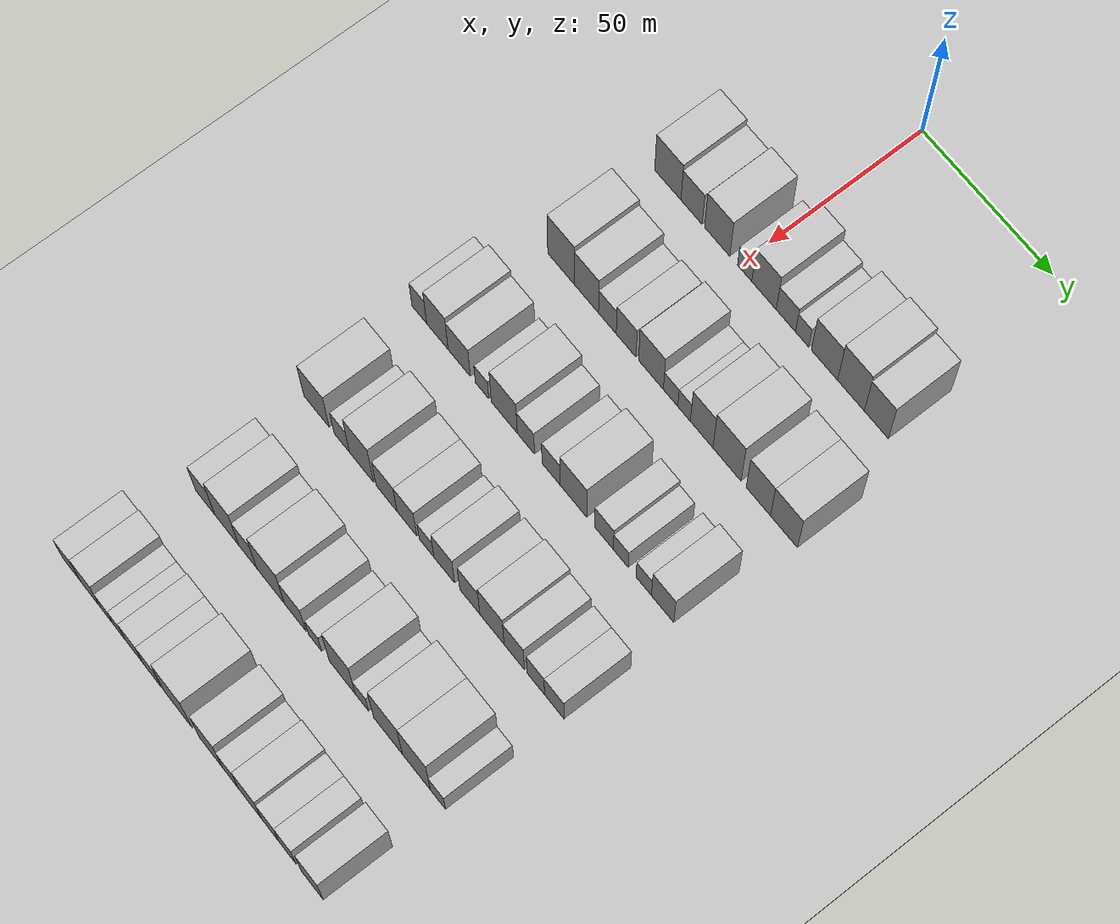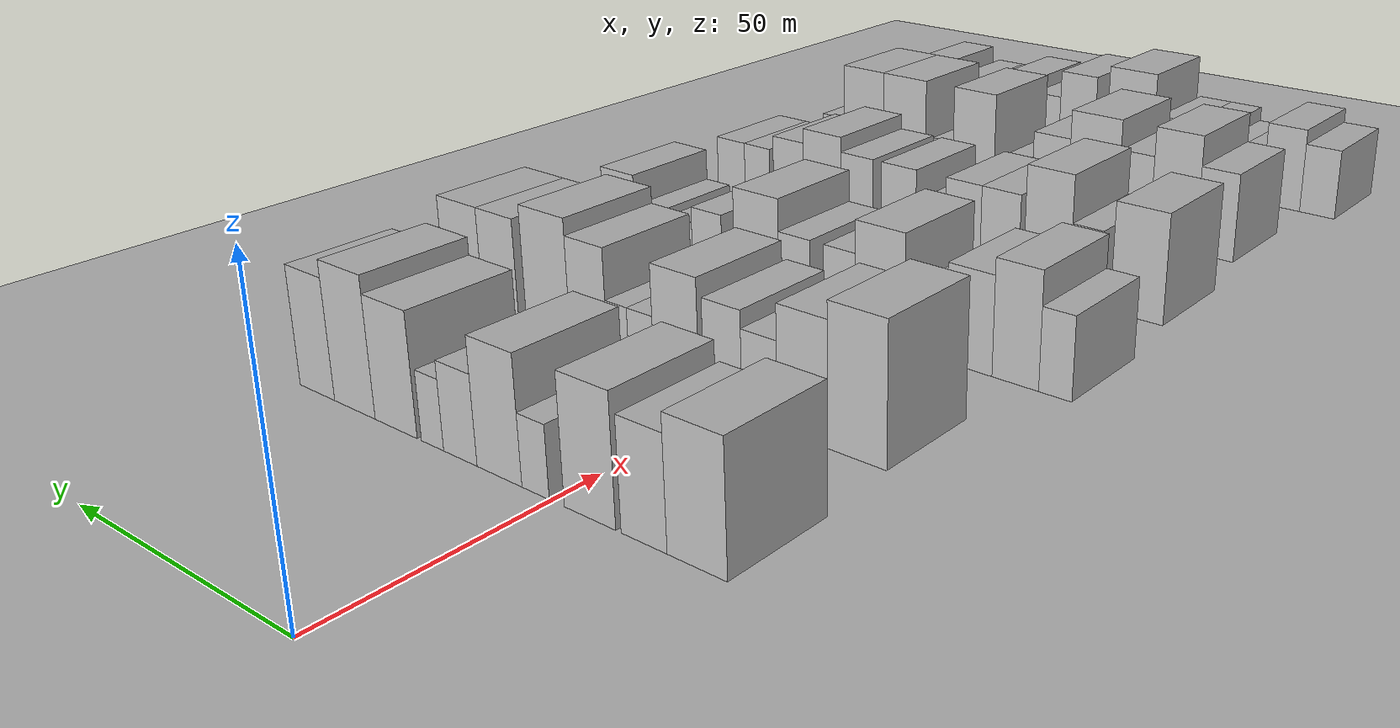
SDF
<sdf version="1.6">
 <world name="default">
  <include><name>ground_plane_1</name><uri>model://HANNAS_ground_plane</uri></include>
  <include>
   <name>ground_plane_2</name>
   <uri>model://HANNAS_ground_plane</uri>
   <pose>100 0 0  0 0 0</pose>
  </include>
  <model name="building_55">
   <static>1</static>
   <pose>50.0000 -27.7860 0 0.000000 0.000000 0.000000</pose>
   <link name="link">
    <pose>0 0 10.50 0 0 0</pose>
    <collision name="collision"><geometry><box><size>20.0000 10.4671 21.0000</size></box></geometry></collision>
    <visual name="visual">
     <cast_shadows>0</cast_shadows>
     <geometry><box><size>20.0000 10.4671 21.0000</size></box></geometry>
     <material>
      <script>
       <uri>model://HANNAS_wall/materials/scripts</uri>
       <uri>model://HANNAS_wall/materials/textures</uri>
       <name>vrc/HANNAS_wall</name>
      </script>
     </material>
    </visual>
   </link>
  </model>
  <model name="building_56">
   <static>1</static>
   <pose>50.0000 -18.3479 0 0.000000 0.000000 0.000000</pose>
   <link name="link">
    <pose>0 0 9.00 0 0 0</pose>
    <collision name="collision"><geometry><box><size>20.0000 8.4090 18.0000</size></box></geometry></collision>
    <visual name="visual">
     <cast_shadows>0</cast_shadows>
     <geometry><box><size>20.0000 8.4090 18.0000</size></box></geometry>
     <material>
      <script>
       <uri>model://HANNAS_wall/materials/scripts</uri>
       <uri>model://HANNAS_wall/materials/textures</uri>
       <name>vrc/HANNAS_wall</name>
      </script>
     </material>
    </visual>
   </link>
  </model>
  <model name="building_57">
   <static>1</static>
   <pose>50.0000 -8.1691 0 0.000000 0.000000 0.000000</pose>
   <link name="link">
    <pose>0 0 10.50 0 0 0</pose>
    <collision name="collision"><geometry><box><size>20.0000 9.9487 21.0000</size></box></geometry></collision>
    <visual name="visual">
     <cast_shadows>0</cast_shadows>
     <geometry><box><size>20.0000 9.9487 21.0000</size></box></geometry>
     <material>
      <script>
       <uri>model://HANNAS_wall/materials/scripts</uri>
       <uri>model://HANNAS_wall/materials/textures</uri>
       <name>vrc/HANNAS_wall</name>
      </script>
     </material>
    </visual>
   </link>
  </model>
  <model name="building_58">
   <static>1</static>
   <pose>50.0000 2.6003 0 0.000000 0.000000 0.000000</pose>
   <link name="link">
    <pose>0 0 6.00 0 0 0</pose>
    <collision name="collision"><geometry><box><size>20.0000 5.5902 12.0000</size></box></geometry></collision>
    <visual name="visual">
     <cast_shadows>0</cast_shadows>
     <geometry><box><size>20.0000 5.5902 12.0000</size></box></geometry>
     <material>
      <script>
       <uri>model://HANNAS_wall/materials/scripts</uri>
       <uri>model://HANNAS_wall/materials/textures</uri>
       <name>vrc/HANNAS_wall</name>
      </script>
     </material>
    </visual>
   </link>
  </model>
  <model name="building_59">
   <static>1</static>
   <pose>50.0000 10.1750 0 0.000000 0.000000 0.000000</pose>
   <link name="link">
    <pose>0 0 10.50 0 0 0</pose>
    <collision name="collision"><geometry><box><size>20.0000 9.5592 21.0000</size></box></geometry></collision>
    <visual name="visual">
     <cast_shadows>0</cast_shadows>
     <geometry><box><size>20.0000 9.5592 21.0000</size></box></geometry>
     <material>
      <script>
       <uri>model://HANNAS_wall/materials/scripts</uri>
       <uri>model://HANNAS_wall/materials/textures</uri>
       <name>vrc/HANNAS_wall</name>
      </script>
     </material>
    </visual>
   </link>
  </model>
  <model name="building_60">
   <static>1</static>
   <pose>50.0000 18.6716 0 0.000000 0.000000 0.000000</pose>
   <link name="link">
    <pose>0 0 7.50 0 0 0</pose>
    <collision name="collision"><geometry><box><size>20.0000 7.4339 15.0000</size></box></geometry></collision>
    <visual name="visual">
     <cast_shadows>0</cast_shadows>
     <geometry><box><size>20.0000 7.4339 15.0000</size></box></geometry>
     <material>
      <script>
       <uri>model://HANNAS_wall/materials/scripts</uri>
       <uri>model://HANNAS_wall/materials/textures</uri>
       <name>vrc/HANNAS_wall</name>
      </script>
     </material>
    </visual>
   </link>
  </model>
  <model name="building_61">
   <static>1</static>
   <pose>50.0000 24.9413 0 0.000000 0.000000 0.000000</pose>
   <link name="link">
    <pose>0 0 6.00 0 0 0</pose>
    <collision name="collision"><geometry><box><size>20.0000 5.1055 12.0000</size></box></geometry></collision>
    <visual name="visual">
     <cast_shadows>0</cast_shadows>
     <geometry><box><size>20.0000 5.1055 12.0000</size></box></geometry>
     <material>
      <script>
       <uri>model://HANNAS_wall/materials/scripts</uri>
       <uri>model://HANNAS_wall/materials/textures</uri>
       <name>vrc/HANNAS_wall</name>
      </script>
     </material>
    </visual>
   </link>
  </model>
  <model name="building_62">
   <static>1</static>
   <pose>50.0000 33.5250 0 0.000000 0.000000 0.000000</pose>
   <link name="link">
    <pose>0 0 10.50 0 0 0</pose>
    <collision name="collision"><geometry><box><size>20.0000 10.0618 21.0000</size></box></geometry></collision>
    <visual name="visual">
     <cast_shadows>0</cast_shadows>
     <geometry><box><size>20.0000 10.0618 21.0000</size></box></geometry>
     <material>
      <script>
       <uri>model://HANNAS_wall/materials/scripts</uri>
       <uri>model://HANNAS_wall/materials/textures</uri>
       <name>vrc/HANNAS_wall</name>
      </script>
     </material>
    </visual>
   </link>
  </model>
  <model name="building_63">
   <static>1</static>
   <pose>50.0000 43.6512 0 0.000000 0.000000 0.000000</pose>
   <link name="link">
    <pose>0 0 12.00 0 0 0</pose>
    <collision name="collision"><geometry><box><size>20.0000 10.1907 24.0000</size></box></geometry></collision>
    <visual name="visual">
     <cast_shadows>0</cast_shadows>
     <geometry><box><size>20.0000 10.1907 24.0000</size></box></geometry>
     <material>
      <script>
       <uri>model://HANNAS_wall/materials/scripts</uri>
       <uri>model://HANNAS_wall/materials/textures</uri>
       <name>vrc/HANNAS_wall</name>
      </script>
     </material>
    </visual>
   </link>
  </model>
  <model name="building_64">
   <static>1</static>
   <pose>50.0000 53.2831 0 0.000000 0.000000 0.000000</pose>
   <link name="link">
    <pose>0 0 10.50 0 0 0</pose>
    <collision name="collision"><geometry><box><size>20.0000 9.0732 21.0000</size></box></geometry></collision>
    <visual name="visual">
     <cast_shadows>0</cast_shadows>
     <geometry><box><size>20.0000 9.0732 21.0000</size></box></geometry>
     <material>
      <script>
       <uri>model://HANNAS_wall/materials/scripts</uri>
       <uri>model://HANNAS_wall/materials/textures</uri>
       <name>vrc/HANNAS_wall</name>
      </script>
     </material>
    </visual>
   </link>
  </model>
  <model name="building_182">
   <static>1</static>
   <pose>85.0000 -26.3958 0 0.000000 0.000000 0.000000</pose>
   <link name="link">
    <pose>0 0 12.00 0 0 0</pose>
    <collision name="collision"><geometry><box><size>20.0000 10.7527 24.0000</size></box></geometry></collision>
    <visual name="visual">
     <cast_shadows>0</cast_shadows>
     <geometry><box><size>20.0000 10.7527 24.0000</size></box></geometry>
     <material>
      <script>
       <uri>model://HANNAS_wall/materials/scripts</uri>
       <uri>model://HANNAS_wall/materials/textures</uri>
       <name>vrc/HANNAS_wall</name>
      </script>
     </material>
    </visual>
   </link>
  </model>
  <model name="building_183">
   <static>1</static>
   <pose>85.0000 -16.2431 0 0.000000 0.000000 0.000000</pose>
   <link name="link">
    <pose>0 0 10.50 0 0 0</pose>
    <collision name="collision"><geometry><box><size>20.0000 9.5525 21.0000</size></box></geometry></collision>
    <visual name="visual">
     <cast_shadows>0</cast_shadows>
     <geometry><box><size>20.0000 9.5525 21.0000</size></box></geometry>
     <material>
      <script>
       <uri>model://HANNAS_wall/materials/scripts</uri>
       <uri>model://HANNAS_wall/materials/textures</uri>
       <name>vrc/HANNAS_wall</name>
      </script>
     </material>
    </visual>
   </link>
  </model>
  <model name="building_184">
   <static>1</static>
   <pose>85.0000 -7.9561 0 0.000000 0.000000 0.000000</pose>
   <link name="link">
    <pose>0 0 7.50 0 0 0</pose>
    <collision name="collision"><geometry><box><size>20.0000 7.0215 15.0000</size></box></geometry></collision>
    <visual name="visual">
     <cast_shadows>0</cast_shadows>
     <geometry><box><size>20.0000 7.0215 15.0000</size></box></geometry>
     <material>
      <script>
       <uri>model://HANNAS_wall/materials/scripts</uri>
       <uri>model://HANNAS_wall/materials/textures</uri>
       <name>vrc/HANNAS_wall</name>
      </script>
     </material>
    </visual>
   </link>
  </model>
  <model name="building_185">
   <static>1</static>
   <pose>85.0000 -0.5476 0 0.000000 0.000000 0.000000</pose>
   <link name="link">
    <pose>0 0 9.00 0 0 0</pose>
    <collision name="collision"><geometry><box><size>20.0000 7.7955 18.0000</size></box></geometry></collision>
    <visual name="visual">
     <cast_shadows>0</cast_shadows>
     <geometry><box><size>20.0000 7.7955 18.0000</size></box></geometry>
     <material>
      <script>
       <uri>model://HANNAS_wall/materials/scripts</uri>
       <uri>model://HANNAS_wall/materials/textures</uri>
       <name>vrc/HANNAS_wall</name>
      </script>
     </material>
    </visual>
   </link>
  </model>
  <model name="building_186">
   <static>1</static>
   <pose>85.0000 9.2130 0 0.000000 0.000000 0.000000</pose>
   <link name="link">
    <pose>0 0 10.50 0 0 0</pose>
    <collision name="collision"><geometry><box><size>20.0000 9.7259 21.0000</size></box></geometry></collision>
    <visual name="visual">
     <cast_shadows>0</cast_shadows>
     <geometry><box><size>20.0000 9.7259 21.0000</size></box></geometry>
     <material>
      <script>
       <uri>model://HANNAS_wall/materials/scripts</uri>
       <uri>model://HANNAS_wall/materials/textures</uri>
       <name>vrc/HANNAS_wall</name>
      </script>
     </material>
    </visual>
   </link>
  </model>
  <model name="building_187">
   <static>1</static>
   <pose>85.0000 16.8855 0 0.000000 0.000000 0.000000</pose>
   <link name="link">
    <pose>0 0 6.00 0 0 0</pose>
    <collision name="collision"><geometry><box><size>20.0000 5.6191 12.0000</size></box></geometry></collision>
    <visual name="visual">
     <cast_shadows>0</cast_shadows>
     <geometry><box><size>20.0000 5.6191 12.0000</size></box></geometry>
     <material>
      <script>
       <uri>model://HANNAS_wall/materials/scripts</uri>
       <uri>model://HANNAS_wall/materials/textures</uri>
       <name>vrc/HANNAS_wall</name>
      </script>
     </material>
    </visual>
   </link>
  </model>
  <model name="building_188">
   <static>1</static>
   <pose>85.0000 22.1288 0 0.000000 0.000000 0.000000</pose>
   <link name="link">
    <pose>0 0 6.00 0 0 0</pose>
    <collision name="collision"><geometry><box><size>20.0000 4.8674 12.0000</size></box></geometry></collision>
    <visual name="visual">
     <cast_shadows>0</cast_shadows>
     <geometry><box><size>20.0000 4.8674 12.0000</size></box></geometry>
     <material>
      <script>
       <uri>model://HANNAS_wall/materials/scripts</uri>
       <uri>model://HANNAS_wall/materials/textures</uri>
       <name>vrc/HANNAS_wall</name>
      </script>
     </material>
    </visual>
   </link>
  </model>
  <model name="building_189">
   <static>1</static>
   <pose>85.0000 28.9378 0 0.000000 0.000000 0.000000</pose>
   <link name="link">
    <pose>0 0 10.50 0 0 0</pose>
    <collision name="collision"><geometry><box><size>20.0000 8.7505 21.0000</size></box></geometry></collision>
    <visual name="visual">
     <cast_shadows>0</cast_shadows>
     <geometry><box><size>20.0000 8.7505 21.0000</size></box></geometry>
     <material>
      <script>
       <uri>model://HANNAS_wall/materials/scripts</uri>
       <uri>model://HANNAS_wall/materials/textures</uri>
       <name>vrc/HANNAS_wall</name>
      </script>
     </material>
    </visual>
   </link>
  </model>
  <model name="building_190">
   <static>1</static>
   <pose>85.0000 38.7051 0 0.000000 0.000000 0.000000</pose>
   <link name="link">
    <pose>0 0 12.00 0 0 0</pose>
    <collision name="collision"><geometry><box><size>20.0000 10.7841 24.0000</size></box></geometry></collision>
    <visual name="visual">
     <cast_shadows>0</cast_shadows>
     <geometry><box><size>20.0000 10.7841 24.0000</size></box></geometry>
     <material>
      <script>
       <uri>model://HANNAS_wall/materials/scripts</uri>
       <uri>model://HANNAS_wall/materials/textures</uri>
       <name>vrc/HANNAS_wall</name>
      </script>
     </material>
    </visual>
   </link>
  </model>
  <model name="building_191">
   <static>1</static>
   <pose>85.0000 50.6989 0 0.000000 0.000000 0.000000</pose>
   <link name="link">
    <pose>0 0 10.50 0 0 0</pose>
    <collision name="collision"><geometry><box><size>20.0000 9.2036 21.0000</size></box></geometry></collision>
    <visual name="visual">
     <cast_shadows>0</cast_shadows>
     <geometry><box><size>20.0000 9.2036 21.0000</size></box></geometry>
     <material>
      <script>
       <uri>model://HANNAS_wall/materials/scripts</uri>
       <uri>model://HANNAS_wall/materials/textures</uri>
       <name>vrc/HANNAS_wall</name>
      </script>
     </material>
    </visual>
   </link>
  </model>
  <model name="building_192">
   <static>1</static>
   <pose>85.0000 60.4171 0 0.000000 0.000000 0.000000</pose>
   <link name="link">
    <pose>0 0 10.50 0 0 0</pose>
    <collision name="collision"><geometry><box><size>20.0000 10.2328 21.0000</size></box></geometry></collision>
    <visual name="visual">
     <cast_shadows>0</cast_shadows>
     <geometry><box><size>20.0000 10.2328 21.0000</size></box></geometry>
     <material>
      <script>
       <uri>model://HANNAS_wall/materials/scripts</uri>
       <uri>model://HANNAS_wall/materials/textures</uri>
       <name>vrc/HANNAS_wall</name>
      </script>
     </material>
    </visual>
   </link>
  </model>
  <model name="building_308">
   <static>1</static>
   <pose>120.0000 -38.3789 0 0.000000 0.000000 0.000000</pose>
   <link name="link">
    <pose>0 0 7.50 0 0 0</pose>
    <collision name="collision"><geometry><box><size>20.0000 6.0082 15.0000</size></box></geometry></collision>
    <visual name="visual">
     <cast_shadows>0</cast_shadows>
     <geometry><box><size>20.0000 6.0082 15.0000</size></box></geometry>
     <material>
      <script>
       <uri>model://HANNAS_wall/materials/scripts</uri>
       <uri>model://HANNAS_wall/materials/textures</uri>
       <name>vrc/HANNAS_wall</name>
      </script>
     </material>
    </visual>
   </link>
  </model>
  <model name="building_309">
   <static>1</static>
   <pose>120.0000 -31.0264 0 0.000000 0.000000 0.000000</pose>
   <link name="link">
    <pose>0 0 10.50 0 0 0</pose>
    <collision name="collision"><geometry><box><size>20.0000 8.6968 21.0000</size></box></geometry></collision>
    <visual name="visual">
     <cast_shadows>0</cast_shadows>
     <geometry><box><size>20.0000 8.6968 21.0000</size></box></geometry>
     <material>
      <script>
       <uri>model://HANNAS_wall/materials/scripts</uri>
       <uri>model://HANNAS_wall/materials/textures</uri>
       <name>vrc/HANNAS_wall</name>
      </script>
     </material>
    </visual>
   </link>
  </model>
  <model name="building_310">
   <static>1</static>
   <pose>120.0000 -22.2112 0 0.000000 0.000000 0.000000</pose>
   <link name="link">
    <pose>0 0 9.00 0 0 0</pose>
    <collision name="collision"><geometry><box><size>20.0000 8.9335 18.0000</size></box></geometry></collision>
    <visual name="visual">
     <cast_shadows>0</cast_shadows>
     <geometry><box><size>20.0000 8.9335 18.0000</size></box></geometry>
     <material>
      <script>
       <uri>model://HANNAS_wall/materials/scripts</uri>
       <uri>model://HANNAS_wall/materials/textures</uri>
       <name>vrc/HANNAS_wall</name>
      </script>
     </material>
    </visual>
   </link>
  </model>
  <model name="building_311">
   <static>1</static>
   <pose>120.0000 -13.0457 0 0.000000 0.000000 0.000000</pose>
   <link name="link">
    <pose>0 0 6.00 0 0 0</pose>
    <collision name="collision"><geometry><box><size>20.0000 5.3976 12.0000</size></box></geometry></collision>
    <visual name="visual">
     <cast_shadows>0</cast_shadows>
     <geometry><box><size>20.0000 5.3976 12.0000</size></box></geometry>
     <material>
      <script>
       <uri>model://HANNAS_wall/materials/scripts</uri>
       <uri>model://HANNAS_wall/materials/textures</uri>
       <name>vrc/HANNAS_wall</name>
      </script>
     </material>
    </visual>
   </link>
  </model>
  <model name="building_312">
   <static>1</static>
   <pose>120.0000 -4.1575 0 0.000000 0.000000 0.000000</pose>
   <link name="link">
    <pose>0 0 10.50 0 0 0</pose>
    <collision name="collision"><geometry><box><size>20.0000 10.3786 21.0000</size></box></geometry></collision>
    <visual name="visual">
     <cast_shadows>0</cast_shadows>
     <geometry><box><size>20.0000 10.3786 21.0000</size></box></geometry>
     <material>
      <script>
       <uri>model://HANNAS_wall/materials/scripts</uri>
       <uri>model://HANNAS_wall/materials/textures</uri>
       <name>vrc/HANNAS_wall</name>
      </script>
     </material>
    </visual>
   </link>
  </model>
  <model name="building_313">
   <static>1</static>
   <pose>120.0000 4.4223 0 0.000000 0.000000 0.000000</pose>
   <link name="link">
    <pose>0 0 7.50 0 0 0</pose>
    <collision name="collision"><geometry><box><size>20.0000 6.7811 15.0000</size></box></geometry></collision>
    <visual name="visual">
     <cast_shadows>0</cast_shadows>
     <geometry><box><size>20.0000 6.7811 15.0000</size></box></geometry>
     <material>
      <script>
       <uri>model://HANNAS_wall/materials/scripts</uri>
       <uri>model://HANNAS_wall/materials/textures</uri>
       <name>vrc/HANNAS_wall</name>
      </script>
     </material>
    </visual>
   </link>
  </model>
  <model name="building_314">
   <static>1</static>
   <pose>120.0000 14.3544 0 0.000000 0.000000 0.000000</pose>
   <link name="link">
    <pose>0 0 7.50 0 0 0</pose>
    <collision name="collision"><geometry><box><size>20.0000 7.0831 15.0000</size></box></geometry></collision>
    <visual name="visual">
     <cast_shadows>0</cast_shadows>
     <geometry><box><size>20.0000 7.0831 15.0000</size></box></geometry>
     <material>
      <script>
       <uri>model://HANNAS_wall/materials/scripts</uri>
       <uri>model://HANNAS_wall/materials/textures</uri>
       <name>vrc/HANNAS_wall</name>
      </script>
     </material>
    </visual>
   </link>
  </model>
  <model name="building_315">
   <static>1</static>
   <pose>120.0000 23.0806 0 0.000000 0.000000 0.000000</pose>
   <link name="link">
    <pose>0 0 10.50 0 0 0</pose>
    <collision name="collision"><geometry><box><size>20.0000 10.3694 21.0000</size></box></geometry></collision>
    <visual name="visual">
     <cast_shadows>0</cast_shadows>
     <geometry><box><size>20.0000 10.3694 21.0000</size></box></geometry>
     <material>
      <script>
       <uri>model://HANNAS_wall/materials/scripts</uri>
       <uri>model://HANNAS_wall/materials/textures</uri>
       <name>vrc/HANNAS_wall</name>
      </script>
     </material>
    </visual>
   </link>
  </model>
  <model name="building_316">
   <static>1</static>
   <pose>120.0000 34.9145 0 0.000000 0.000000 0.000000</pose>
   <link name="link">
    <pose>0 0 7.50 0 0 0</pose>
    <collision name="collision"><geometry><box><size>20.0000 7.2983 15.0000</size></box></geometry></collision>
    <visual name="visual">
     <cast_shadows>0</cast_shadows>
     <geometry><box><size>20.0000 7.2983 15.0000</size></box></geometry>
     <material>
      <script>
       <uri>model://HANNAS_wall/materials/scripts</uri>
       <uri>model://HANNAS_wall/materials/textures</uri>
       <name>vrc/HANNAS_wall</name>
      </script>
     </material>
    </visual>
   </link>
  </model>
  <model name="building_317">
   <static>1</static>
   <pose>120.0000 41.4288 0 0.000000 0.000000 0.000000</pose>
   <link name="link">
    <pose>0 0 6.00 0 0 0</pose>
    <collision name="collision"><geometry><box><size>20.0000 5.7303 12.0000</size></box></geometry></collision>
    <visual name="visual">
     <cast_shadows>0</cast_shadows>
     <geometry><box><size>20.0000 5.7303 12.0000</size></box></geometry>
     <material>
      <script>
       <uri>model://HANNAS_wall/materials/scripts</uri>
       <uri>model://HANNAS_wall/materials/textures</uri>
       <name>vrc/HANNAS_wall</name>
      </script>
     </material>
    </visual>
   </link>
  </model>
  <model name="building_318">
   <static>1</static>
   <pose>120.0000 50.2404 0 0.000000 0.000000 0.000000</pose>
   <link name="link">
    <pose>0 0 6.00 0 0 0</pose>
    <collision name="collision"><geometry><box><size>20.0000 5.8928 12.0000</size></box></geometry></collision>
    <visual name="visual">
     <cast_shadows>0</cast_shadows>
     <geometry><box><size>20.0000 5.8928 12.0000</size></box></geometry>
     <material>
      <script>
       <uri>model://HANNAS_wall/materials/scripts</uri>
       <uri>model://HANNAS_wall/materials/textures</uri>
       <name>vrc/HANNAS_wall</name>
      </script>
     </material>
    </visual>
   </link>
  </model>
  <model name="building_319">
   <static>1</static>
   <pose>120.0000 57.4433 0 0.000000 0.000000 0.000000</pose>
   <link name="link">
    <pose>0 0 9.00 0 0 0</pose>
    <collision name="collision"><geometry><box><size>20.0000 8.5129 18.0000</size></box></geometry></collision>
    <visual name="visual">
     <cast_shadows>0</cast_shadows>
     <geometry><box><size>20.0000 8.5129 18.0000</size></box></geometry>
     <material>
      <script>
       <uri>model://HANNAS_wall/materials/scripts</uri>
       <uri>model://HANNAS_wall/materials/textures</uri>
       <name>vrc/HANNAS_wall</name>
      </script>
     </material>
    </visual>
   </link>
  </model>
  <model name="building_436">
   <static>1</static>
   <pose>155.0000 -33.6533 0 0.000000 0.000000 0.000000</pose>
   <link name="link">
    <pose>0 0 10.50 0 0 0</pose>
    <collision name="collision"><geometry><box><size>20.0000 10.3035 21.0000</size></box></geometry></collision>
    <visual name="visual">
     <cast_shadows>0</cast_shadows>
     <geometry><box><size>20.0000 10.3035 21.0000</size></box></geometry>
     <material>
      <script>
       <uri>model://HANNAS_wall/materials/scripts</uri>
       <uri>model://HANNAS_wall/materials/textures</uri>
       <name>vrc/HANNAS_wall</name>
      </script>
     </material>
    </visual>
   </link>
  </model>
  <model name="building_437">
   <static>1</static>
   <pose>155.0000 -23.3596 0 0.000000 0.000000 0.000000</pose>
   <link name="link">
    <pose>0 0 7.50 0 0 0</pose>
    <collision name="collision"><geometry><box><size>20.0000 6.2838 15.0000</size></box></geometry></collision>
    <visual name="visual">
     <cast_shadows>0</cast_shadows>
     <geometry><box><size>20.0000 6.2838 15.0000</size></box></geometry>
     <material>
      <script>
       <uri>model://HANNAS_wall/materials/scripts</uri>
       <uri>model://HANNAS_wall/materials/textures</uri>
       <name>vrc/HANNAS_wall</name>
      </script>
     </material>
    </visual>
   </link>
  </model>
  <model name="building_438">
   <static>1</static>
   <pose>155.0000 -15.3714 0 0.000000 0.000000 0.000000</pose>
   <link name="link">
    <pose>0 0 12.00 0 0 0</pose>
    <collision name="collision"><geometry><box><size>20.0000 9.6926 24.0000</size></box></geometry></collision>
    <visual name="visual">
     <cast_shadows>0</cast_shadows>
     <geometry><box><size>20.0000 9.6926 24.0000</size></box></geometry>
     <material>
      <script>
       <uri>model://HANNAS_wall/materials/scripts</uri>
       <uri>model://HANNAS_wall/materials/textures</uri>
       <name>vrc/HANNAS_wall</name>
      </script>
     </material>
    </visual>
   </link>
  </model>
  <model name="building_439">
   <static>1</static>
   <pose>155.0000 -5.3158 0 0.000000 0.000000 0.000000</pose>
   <link name="link">
    <pose>0 0 9.00 0 0 0</pose>
    <collision name="collision"><geometry><box><size>20.0000 8.4187 18.0000</size></box></geometry></collision>
    <visual name="visual">
     <cast_shadows>0</cast_shadows>
     <geometry><box><size>20.0000 8.4187 18.0000</size></box></geometry>
     <material>
      <script>
       <uri>model://HANNAS_wall/materials/scripts</uri>
       <uri>model://HANNAS_wall/materials/textures</uri>
       <name>vrc/HANNAS_wall</name>
      </script>
     </material>
    </visual>
   </link>
  </model>
  <model name="building_440">
   <static>1</static>
   <pose>155.0000 2.8377 0 0.000000 0.000000 0.000000</pose>
   <link name="link">
    <pose>0 0 9.00 0 0 0</pose>
    <collision name="collision"><geometry><box><size>20.0000 7.8881 18.0000</size></box></geometry></collision>
    <visual name="visual">
     <cast_shadows>0</cast_shadows>
     <geometry><box><size>20.0000 7.8881 18.0000</size></box></geometry>
     <material>
      <script>
       <uri>model://HANNAS_wall/materials/scripts</uri>
       <uri>model://HANNAS_wall/materials/textures</uri>
       <name>vrc/HANNAS_wall</name>
      </script>
     </material>
    </visual>
   </link>
  </model>
  <model name="building_441">
   <static>1</static>
   <pose>155.0000 10.6793 0 0.000000 0.000000 0.000000</pose>
   <link name="link">
    <pose>0 0 6.00 0 0 0</pose>
    <collision name="collision"><geometry><box><size>20.0000 5.7950 12.0000</size></box></geometry></collision>
    <visual name="visual">
     <cast_shadows>0</cast_shadows>
     <geometry><box><size>20.0000 5.7950 12.0000</size></box></geometry>
     <material>
      <script>
       <uri>model://HANNAS_wall/materials/scripts</uri>
       <uri>model://HANNAS_wall/materials/textures</uri>
       <name>vrc/HANNAS_wall</name>
      </script>
     </material>
    </visual>
   </link>
  </model>
  <model name="building_442">
   <static>1</static>
   <pose>155.0000 17.6611 0 0.000000 0.000000 0.000000</pose>
   <link name="link">
    <pose>0 0 9.00 0 0 0</pose>
    <collision name="collision"><geometry><box><size>20.0000 8.1686 18.0000</size></box></geometry></collision>
    <visual name="visual">
     <cast_shadows>0</cast_shadows>
     <geometry><box><size>20.0000 8.1686 18.0000</size></box></geometry>
     <material>
      <script>
       <uri>model://HANNAS_wall/materials/scripts</uri>
       <uri>model://HANNAS_wall/materials/textures</uri>
       <name>vrc/HANNAS_wall</name>
      </script>
     </material>
    </visual>
   </link>
  </model>
  <model name="building_443">
   <static>1</static>
   <pose>155.0000 27.6809 0 0.000000 0.000000 0.000000</pose>
   <link name="link">
    <pose>0 0 9.00 0 0 0</pose>
    <collision name="collision"><geometry><box><size>20.0000 7.8711 18.0000</size></box></geometry></collision>
    <visual name="visual">
     <cast_shadows>0</cast_shadows>
     <geometry><box><size>20.0000 7.8711 18.0000</size></box></geometry>
     <material>
      <script>
       <uri>model://HANNAS_wall/materials/scripts</uri>
       <uri>model://HANNAS_wall/materials/textures</uri>
       <name>vrc/HANNAS_wall</name>
      </script>
     </material>
    </visual>
   </link>
  </model>
  <model name="building_444">
   <static>1</static>
   <pose>155.0000 36.3362 0 0.000000 0.000000 0.000000</pose>
   <link name="link">
    <pose>0 0 10.50 0 0 0</pose>
    <collision name="collision"><geometry><box><size>20.0000 9.4395 21.0000</size></box></geometry></collision>
    <visual name="visual">
     <cast_shadows>0</cast_shadows>
     <geometry><box><size>20.0000 9.4395 21.0000</size></box></geometry>
     <material>
      <script>
       <uri>model://HANNAS_wall/materials/scripts</uri>
       <uri>model://HANNAS_wall/materials/textures</uri>
       <name>vrc/HANNAS_wall</name>
      </script>
     </material>
    </visual>
   </link>
  </model>
  <model name="building_445">
   <static>1</static>
   <pose>155.0000 44.9960 0 0.000000 0.000000 0.000000</pose>
   <link name="link">
    <pose>0 0 9.00 0 0 0</pose>
    <collision name="collision"><geometry><box><size>20.0000 7.8801 18.0000</size></box></geometry></collision>
    <visual name="visual">
     <cast_shadows>0</cast_shadows>
     <geometry><box><size>20.0000 7.8801 18.0000</size></box></geometry>
     <material>
      <script>
       <uri>model://HANNAS_wall/materials/scripts</uri>
       <uri>model://HANNAS_wall/materials/textures</uri>
       <name>vrc/HANNAS_wall</name>
      </script>
     </material>
    </visual>
   </link>
  </model>
  <model name="building_446">
   <static>1</static>
   <pose>155.0000 53.2907 0 0.000000 0.000000 0.000000</pose>
   <link name="link">
    <pose>0 0 7.50 0 0 0</pose>
    <collision name="collision"><geometry><box><size>20.0000 6.7093 15.0000</size></box></geometry></collision>
    <visual name="visual">
     <cast_shadows>0</cast_shadows>
     <geometry><box><size>20.0000 6.7093 15.0000</size></box></geometry>
     <material>
      <script>
       <uri>model://HANNAS_wall/materials/scripts</uri>
       <uri>model://HANNAS_wall/materials/textures</uri>
       <name>vrc/HANNAS_wall</name>
      </script>
     </material>
    </visual>
   </link>
  </model>
  <model name="building_447">
   <static>1</static>
   <pose>155.0000 60.3656 0 0.000000 0.000000 0.000000</pose>
   <link name="link">
    <pose>0 0 7.50 0 0 0</pose>
    <collision name="collision"><geometry><box><size>20.0000 7.4405 15.0000</size></box></geometry></collision>
    <visual name="visual">
     <cast_shadows>0</cast_shadows>
     <geometry><box><size>20.0000 7.4405 15.0000</size></box></geometry>
     <material>
      <script>
       <uri>model://HANNAS_wall/materials/scripts</uri>
       <uri>model://HANNAS_wall/materials/textures</uri>
       <name>vrc/HANNAS_wall</name>
      </script>
     </material>
    </visual>
   </link>
  </model>
  <model name="building_564">
   <static>1</static>
   <pose>190.0000 -31.4630 0 0.000000 0.000000 0.000000</pose>
   <link name="link">
    <pose>0 0 9.00 0 0 0</pose>
    <collision name="collision"><geometry><box><size>20.0000 7.8137 18.0000</size></box></geometry></collision>
    <visual name="visual">
     <cast_shadows>0</cast_shadows>
     <geometry><box><size>20.0000 7.8137 18.0000</size></box></geometry>
     <material>
      <script>
       <uri>model://HANNAS_wall/materials/scripts</uri>
       <uri>model://HANNAS_wall/materials/textures</uri>
       <name>vrc/HANNAS_wall</name>
      </script>
     </material>
    </visual>
   </link>
  </model>
  <model name="building_565">
   <static>1</static>
   <pose>190.0000 -22.6054 0 0.000000 0.000000 0.000000</pose>
   <link name="link">
    <pose>0 0 12.00 0 0 0</pose>
    <collision name="collision"><geometry><box><size>20.0000 9.9014 24.0000</size></box></geometry></collision>
    <visual name="visual">
     <cast_shadows>0</cast_shadows>
     <geometry><box><size>20.0000 9.9014 24.0000</size></box></geometry>
     <material>
      <script>
       <uri>model://HANNAS_wall/materials/scripts</uri>
       <uri>model://HANNAS_wall/materials/textures</uri>
       <name>vrc/HANNAS_wall</name>
      </script>
     </material>
    </visual>
   </link>
  </model>
  <model name="building_566">
   <static>1</static>
   <pose>190.0000 -14.0237 0 0.000000 0.000000 0.000000</pose>
   <link name="link">
    <pose>0 0 9.00 0 0 0</pose>
    <collision name="collision"><geometry><box><size>20.0000 7.2620 18.0000</size></box></geometry></collision>
    <visual name="visual">
     <cast_shadows>0</cast_shadows>
     <geometry><box><size>20.0000 7.2620 18.0000</size></box></geometry>
     <material>
      <script>
       <uri>model://HANNAS_wall/materials/scripts</uri>
       <uri>model://HANNAS_wall/materials/textures</uri>
       <name>vrc/HANNAS_wall</name>
      </script>
     </material>
    </visual>
   </link>
  </model>
  <model name="building_567">
   <static>1</static>
   <pose>190.0000 -4.7530 0 0.000000 0.000000 0.000000</pose>
   <link name="link">
    <pose>0 0 12.00 0 0 0</pose>
    <collision name="collision"><geometry><box><size>20.0000 11.2794 24.0000</size></box></geometry></collision>
    <visual name="visual">
     <cast_shadows>0</cast_shadows>
     <geometry><box><size>20.0000 11.2794 24.0000</size></box></geometry>
     <material>
      <script>
       <uri>model://HANNAS_wall/materials/scripts</uri>
       <uri>model://HANNAS_wall/materials/textures</uri>
       <name>vrc/HANNAS_wall</name>
      </script>
     </material>
    </visual>
   </link>
  </model>
  <model name="building_568">
   <static>1</static>
   <pose>190.0000 5.1426 0 0.000000 0.000000 0.000000</pose>
   <link name="link">
    <pose>0 0 9.00 0 0 0</pose>
    <collision name="collision"><geometry><box><size>20.0000 8.5119 18.0000</size></box></geometry></collision>
    <visual name="visual">
     <cast_shadows>0</cast_shadows>
     <geometry><box><size>20.0000 8.5119 18.0000</size></box></geometry>
     <material>
      <script>
       <uri>model://HANNAS_wall/materials/scripts</uri>
       <uri>model://HANNAS_wall/materials/textures</uri>
       <name>vrc/HANNAS_wall</name>
      </script>
     </material>
    </visual>
   </link>
  </model>
  <model name="building_569">
   <static>1</static>
   <pose>190.0000 13.0398 0 0.000000 0.000000 0.000000</pose>
   <link name="link">
    <pose>0 0 6.00 0 0 0</pose>
    <collision name="collision"><geometry><box><size>20.0000 5.2825 12.0000</size></box></geometry></collision>
    <visual name="visual">
     <cast_shadows>0</cast_shadows>
     <geometry><box><size>20.0000 5.2825 12.0000</size></box></geometry>
     <material>
      <script>
       <uri>model://HANNAS_wall/materials/scripts</uri>
       <uri>model://HANNAS_wall/materials/textures</uri>
       <name>vrc/HANNAS_wall</name>
      </script>
     </material>
    </visual>
   </link>
  </model>
  <model name="building_570">
   <static>1</static>
   <pose>190.0000 23.8491 0 0.000000 0.000000 0.000000</pose>
   <link name="link">
    <pose>0 0 12.00 0 0 0</pose>
    <collision name="collision"><geometry><box><size>20.0000 10.3362 24.0000</size></box></geometry></collision>
    <visual name="visual">
     <cast_shadows>0</cast_shadows>
     <geometry><box><size>20.0000 10.3362 24.0000</size></box></geometry>
     <material>
      <script>
       <uri>model://HANNAS_wall/materials/scripts</uri>
       <uri>model://HANNAS_wall/materials/textures</uri>
       <name>vrc/HANNAS_wall</name>
      </script>
     </material>
    </visual>
   </link>
  </model>
  <model name="building_571">
   <static>1</static>
   <pose>190.0000 31.5994 0 0.000000 0.000000 0.000000</pose>
   <link name="link">
    <pose>0 0 6.00 0 0 0</pose>
    <collision name="collision"><geometry><box><size>20.0000 5.1645 12.0000</size></box></geometry></collision>
    <visual name="visual">
     <cast_shadows>0</cast_shadows>
     <geometry><box><size>20.0000 5.1645 12.0000</size></box></geometry>
     <material>
      <script>
       <uri>model://HANNAS_wall/materials/scripts</uri>
       <uri>model://HANNAS_wall/materials/textures</uri>
       <name>vrc/HANNAS_wall</name>
      </script>
     </material>
    </visual>
   </link>
  </model>
  <model name="building_572">
   <static>1</static>
   <pose>190.0000 41.8037 0 0.000000 0.000000 0.000000</pose>
   <link name="link">
    <pose>0 0 12.00 0 0 0</pose>
    <collision name="collision"><geometry><box><size>20.0000 11.2439 24.0000</size></box></geometry></collision>
    <visual name="visual">
     <cast_shadows>0</cast_shadows>
     <geometry><box><size>20.0000 11.2439 24.0000</size></box></geometry>
     <material>
      <script>
       <uri>model://HANNAS_wall/materials/scripts</uri>
       <uri>model://HANNAS_wall/materials/textures</uri>
       <name>vrc/HANNAS_wall</name>
      </script>
     </material>
    </visual>
   </link>
  </model>
  <model name="building_573">
   <static>1</static>
   <pose>190.0000 52.8067 0 0.000000 0.000000 0.000000</pose>
   <link name="link">
    <pose>0 0 12.00 0 0 0</pose>
    <collision name="collision"><geometry><box><size>20.0000 10.7621 24.0000</size></box></geometry></collision>
    <visual name="visual">
     <cast_shadows>0</cast_shadows>
     <geometry><box><size>20.0000 10.7621 24.0000</size></box></geometry>
     <material>
      <script>
       <uri>model://HANNAS_wall/materials/scripts</uri>
       <uri>model://HANNAS_wall/materials/textures</uri>
       <name>vrc/HANNAS_wall</name>
      </script>
     </material>
    </visual>
   </link>
  </model>
  <model name="building_574">
   <static>1</static>
   <pose>190.0000 61.1136 0 0.000000 0.000000 0.000000</pose>
   <link name="link">
    <pose>0 0 6.00 0 0 0</pose>
    <collision name="collision"><geometry><box><size>20.0000 5.8516 12.0000</size></box></geometry></collision>
    <visual name="visual">
     <cast_shadows>0</cast_shadows>
     <geometry><box><size>20.0000 5.8516 12.0000</size></box></geometry>
     <material>
      <script>
       <uri>model://HANNAS_wall/materials/scripts</uri>
       <uri>model://HANNAS_wall/materials/textures</uri>
       <name>vrc/HANNAS_wall</name>
      </script>
     </material>
    </visual>
   </link>
  </model>
  <model name="building_688">
   <static>1</static>
   <pose>225.0000 -37.4782 0 0.000000 0.000000 0.000000</pose>
   <link name="link">
    <pose>0 0 7.50 0 0 0</pose>
    <collision name="collision"><geometry><box><size>20.0000 7.4535 15.0000</size></box></geometry></collision>
    <visual name="visual">
     <cast_shadows>0</cast_shadows>
     <geometry><box><size>20.0000 7.4535 15.0000</size></box></geometry>
     <material>
      <script>
       <uri>model://HANNAS_wall/materials/scripts</uri>
       <uri>model://HANNAS_wall/materials/textures</uri>
       <name>vrc/HANNAS_wall</name>
      </script>
     </material>
    </visual>
   </link>
  </model>
  <model name="building_689">
   <static>1</static>
   <pose>225.0000 -29.5598 0 0.000000 0.000000 0.000000</pose>
   <link name="link">
    <pose>0 0 9.00 0 0 0</pose>
    <collision name="collision"><geometry><box><size>20.0000 8.3834 18.0000</size></box></geometry></collision>
    <visual name="visual">
     <cast_shadows>0</cast_shadows>
     <geometry><box><size>20.0000 8.3834 18.0000</size></box></geometry>
     <material>
      <script>
       <uri>model://HANNAS_wall/materials/scripts</uri>
       <uri>model://HANNAS_wall/materials/textures</uri>
       <name>vrc/HANNAS_wall</name>
      </script>
     </material>
    </visual>
   </link>
  </model>
  <model name="building_690">
   <static>1</static>
   <pose>225.0000 -22.6599 0 0.000000 0.000000 0.000000</pose>
   <link name="link">
    <pose>0 0 6.00 0 0 0</pose>
    <collision name="collision"><geometry><box><size>20.0000 5.4165 12.0000</size></box></geometry></collision>
    <visual name="visual">
     <cast_shadows>0</cast_shadows>
     <geometry><box><size>20.0000 5.4165 12.0000</size></box></geometry>
     <material>
      <script>
       <uri>model://HANNAS_wall/materials/scripts</uri>
       <uri>model://HANNAS_wall/materials/textures</uri>
       <name>vrc/HANNAS_wall</name>
      </script>
     </material>
    </visual>
   </link>
  </model>
  <model name="building_691">
   <static>1</static>
   <pose>225.0000 -17.4992 0 0.000000 0.000000 0.000000</pose>
   <link name="link">
    <pose>0 0 6.00 0 0 0</pose>
    <collision name="collision"><geometry><box><size>20.0000 4.9049 12.0000</size></box></geometry></collision>
    <visual name="visual">
     <cast_shadows>0</cast_shadows>
     <geometry><box><size>20.0000 4.9049 12.0000</size></box></geometry>
     <material>
      <script>
       <uri>model://HANNAS_wall/materials/scripts</uri>
       <uri>model://HANNAS_wall/materials/textures</uri>
       <name>vrc/HANNAS_wall</name>
      </script>
     </material>
    </visual>
   </link>
  </model>
  <model name="building_692">
   <static>1</static>
   <pose>225.0000 -11.5125 0 0.000000 0.000000 0.000000</pose>
   <link name="link">
    <pose>0 0 7.50 0 0 0</pose>
    <collision name="collision"><geometry><box><size>20.0000 7.0685 15.0000</size></box></geometry></collision>
    <visual name="visual">
     <cast_shadows>0</cast_shadows>
     <geometry><box><size>20.0000 7.0685 15.0000</size></box></geometry>
     <material>
      <script>
       <uri>model://HANNAS_wall/materials/scripts</uri>
       <uri>model://HANNAS_wall/materials/textures</uri>
       <name>vrc/HANNAS_wall</name>
      </script>
     </material>
    </visual>
   </link>
  </model>
  <model name="building_693">
   <static>1</static>
   <pose>225.0000 -4.2828 0 0.000000 0.000000 0.000000</pose>
   <link name="link">
    <pose>0 0 7.50 0 0 0</pose>
    <collision name="collision"><geometry><box><size>20.0000 7.3908 15.0000</size></box></geometry></collision>
    <visual name="visual">
     <cast_shadows>0</cast_shadows>
     <geometry><box><size>20.0000 7.3908 15.0000</size></box></geometry>
     <material>
      <script>
       <uri>model://HANNAS_wall/materials/scripts</uri>
       <uri>model://HANNAS_wall/materials/textures</uri>
       <name>vrc/HANNAS_wall</name>
      </script>
     </material>
    </visual>
   </link>
  </model>
  <model name="building_694">
   <static>1</static>
   <pose>225.0000 6.1056 0 0.000000 0.000000 0.000000</pose>
   <link name="link">
    <pose>0 0 12.00 0 0 0</pose>
    <collision name="collision"><geometry><box><size>20.0000 11.3861 24.0000</size></box></geometry></collision>
    <visual name="visual">
     <cast_shadows>0</cast_shadows>
     <geometry><box><size>20.0000 11.3861 24.0000</size></box></geometry>
     <material>
      <script>
       <uri>model://HANNAS_wall/materials/scripts</uri>
       <uri>model://HANNAS_wall/materials/textures</uri>
       <name>vrc/HANNAS_wall</name>
      </script>
     </material>
    </visual>
   </link>
  </model>
  <model name="building_695">
   <static>1</static>
   <pose>225.0000 19.3333 0 0.000000 0.000000 0.000000</pose>
   <link name="link">
    <pose>0 0 10.50 0 0 0</pose>
    <collision name="collision"><geometry><box><size>20.0000 9.0692 21.0000</size></box></geometry></collision>
    <visual name="visual">
     <cast_shadows>0</cast_shadows>
     <geometry><box><size>20.0000 9.0692 21.0000</size></box></geometry>
     <material>
      <script>
       <uri>model://HANNAS_wall/materials/scripts</uri>
       <uri>model://HANNAS_wall/materials/textures</uri>
       <name>vrc/HANNAS_wall</name>
      </script>
     </material>
    </visual>
   </link>
  </model>
  <model name="building_696">
   <static>1</static>
   <pose>225.0000 27.2163 0 0.000000 0.000000 0.000000</pose>
   <link name="link">
    <pose>0 0 7.50 0 0 0</pose>
    <collision name="collision"><geometry><box><size>20.0000 6.6968 15.0000</size></box></geometry></collision>
    <visual name="visual">
     <cast_shadows>0</cast_shadows>
     <geometry><box><size>20.0000 6.6968 15.0000</size></box></geometry>
     <material>
      <script>
       <uri>model://HANNAS_wall/materials/scripts</uri>
       <uri>model://HANNAS_wall/materials/textures</uri>
       <name>vrc/HANNAS_wall</name>
      </script>
     </material>
    </visual>
   </link>
  </model>
  <model name="building_697">
   <static>1</static>
   <pose>225.0000 34.9890 0 0.000000 0.000000 0.000000</pose>
   <link name="link">
    <pose>0 0 9.00 0 0 0</pose>
    <collision name="collision"><geometry><box><size>20.0000 8.8486 18.0000</size></box></geometry></collision>
    <visual name="visual">
     <cast_shadows>0</cast_shadows>
     <geometry><box><size>20.0000 8.8486 18.0000</size></box></geometry>
     <material>
      <script>
       <uri>model://HANNAS_wall/materials/scripts</uri>
       <uri>model://HANNAS_wall/materials/textures</uri>
       <name>vrc/HANNAS_wall</name>
      </script>
     </material>
    </visual>
   </link>
  </model>
  <model name="building_698">
   <static>1</static>
   <pose>225.0000 42.8762 0 0.000000 0.000000 0.000000</pose>
   <link name="link">
    <pose>0 0 7.50 0 0 0</pose>
    <collision name="collision"><geometry><box><size>20.0000 6.9258 15.0000</size></box></geometry></collision>
    <visual name="visual">
     <cast_shadows>0</cast_shadows>
     <geometry><box><size>20.0000 6.9258 15.0000</size></box></geometry>
     <material>
      <script>
       <uri>model://HANNAS_wall/materials/scripts</uri>
       <uri>model://HANNAS_wall/materials/textures</uri>
       <name>vrc/HANNAS_wall</name>
      </script>
     </material>
    </visual>
   </link>
  </model>
  <model name="building_699">
   <static>1</static>
   <pose>225.0000 49.6594 0 0.000000 0.000000 0.000000</pose>
   <link name="link">
    <pose>0 0 7.50 0 0 0</pose>
    <collision name="collision"><geometry><box><size>20.0000 6.6406 15.0000</size></box></geometry></collision>
    <visual name="visual">
     <cast_shadows>0</cast_shadows>
     <geometry><box><size>20.0000 6.6406 15.0000</size></box></geometry>
     <material>
      <script>
       <uri>model://HANNAS_wall/materials/scripts</uri>
       <uri>model://HANNAS_wall/materials/textures</uri>
       <name>vrc/HANNAS_wall</name>
      </script>
     </material>
    </visual>
   </link>
  </model>
  <model name="building_700">
   <static>1</static>
   <pose>225.0000 59.2177 0 0.000000 0.000000 0.000000</pose>
   <link name="link">
    <pose>0 0 9.00 0 0 0</pose>
    <collision name="collision"><geometry><box><size>20.0000 8.4761 18.0000</size></box></geometry></collision>
    <visual name="visual">
     <cast_shadows>0</cast_shadows>
     <geometry><box><size>20.0000 8.4761 18.0000</size></box></geometry>
     <material>
      <script>
       <uri>model://HANNAS_wall/materials/scripts</uri>
       <uri>model://HANNAS_wall/materials/textures</uri>
       <name>vrc/HANNAS_wall</name>
      </script>
     </material>
    </visual>
   </link>
  </model>
 </world>
</sdf>
